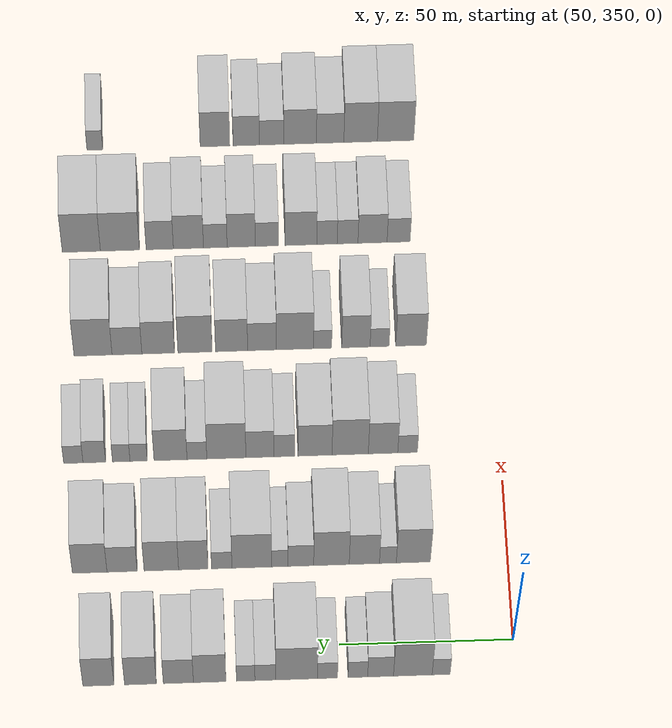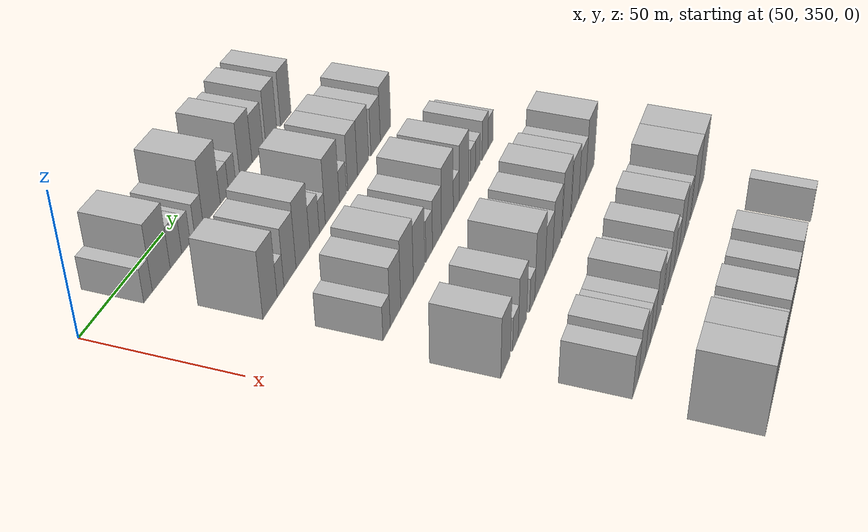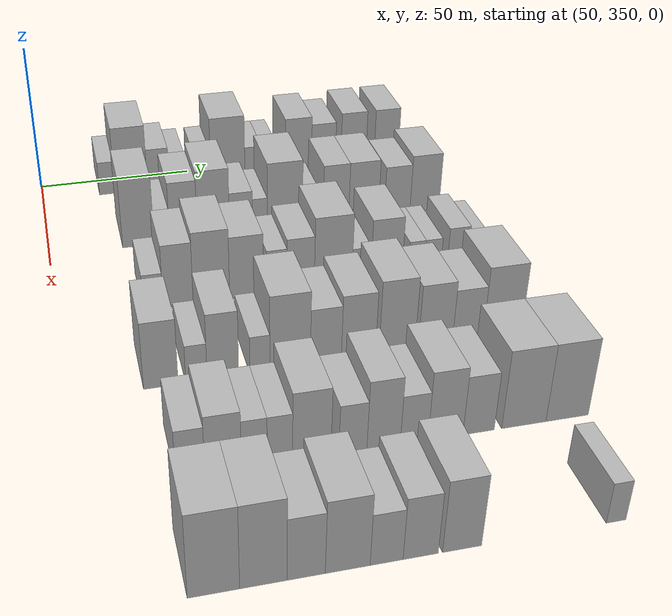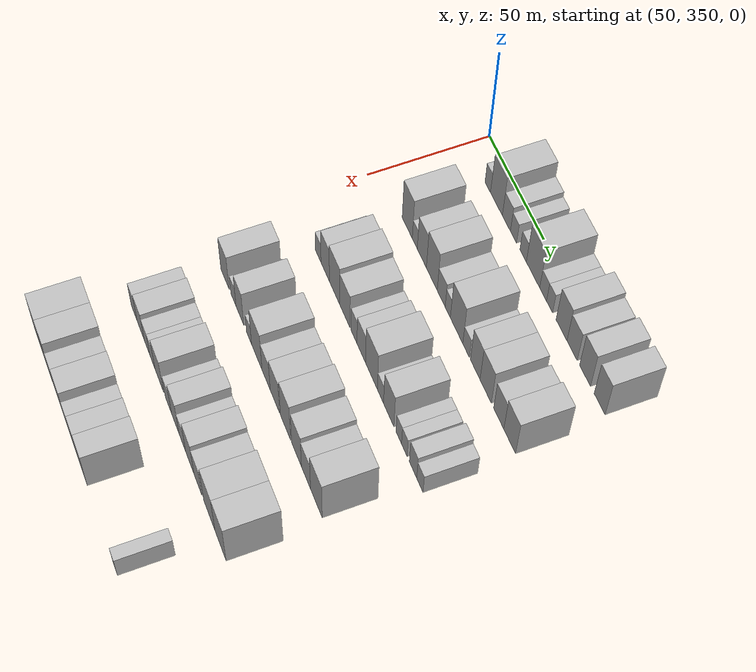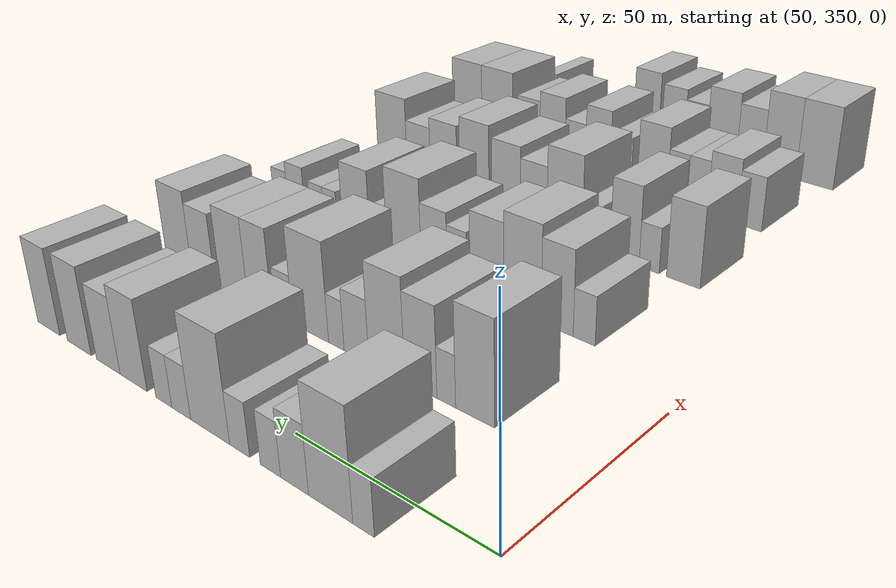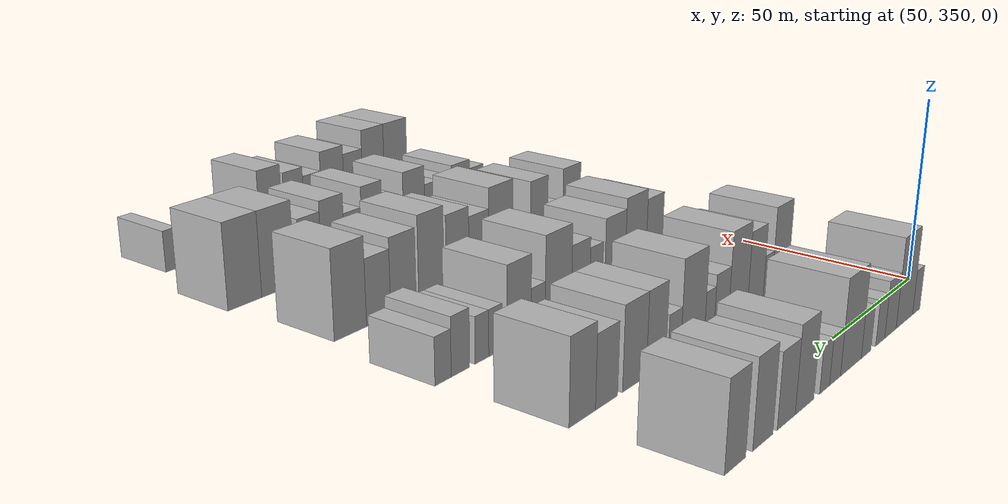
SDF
<sdf version="1.6">
 <world name="default">
  <model name="building_107">
   <static>1</static>
   <pose>50.0000 371.3423 0 0.000000 0.000000 0.000000</pose>
   <link name="link">
    <pose>0 0 6.00 0 0 0</pose>
    <collision name="collision"><geometry><box><size>20.0000 5.1537 12.0000</size></box></geometry></collision>
    <visual name="visual">
     <cast_shadows>0</cast_shadows>
     <geometry><box><size>20.0000 5.1537 12.0000</size></box></geometry>
     <material>
      <script>
       <uri>model://HANNAS_wall/materials/scripts</uri>
       <uri>model://HANNAS_wall/materials/textures</uri>
       <name>vrc/HANNAS_wall</name>
      </script>
     </material>
    </visual>
   </link>
  </model>
  <model name="building_108">
   <static>1</static>
   <pose>50.0000 379.4496 0 0.000000 0.000000 0.000000</pose>
   <link name="link">
    <pose>0 0 12.00 0 0 0</pose>
    <collision name="collision"><geometry><box><size>20.0000 11.0610 24.0000</size></box></geometry></collision>
    <visual name="visual">
     <cast_shadows>0</cast_shadows>
     <geometry><box><size>20.0000 11.0610 24.0000</size></box></geometry>
     <material>
      <script>
       <uri>model://HANNAS_wall/materials/scripts</uri>
       <uri>model://HANNAS_wall/materials/textures</uri>
       <name>vrc/HANNAS_wall</name>
      </script>
     </material>
    </visual>
   </link>
  </model>
  <model name="building_109">
   <static>1</static>
   <pose>50.0000 388.6870 0 0.000000 0.000000 0.000000</pose>
   <link name="link">
    <pose>0 0 7.50 0 0 0</pose>
    <collision name="collision"><geometry><box><size>20.0000 7.4139 15.0000</size></box></geometry></collision>
    <visual name="visual">
     <cast_shadows>0</cast_shadows>
     <geometry><box><size>20.0000 7.4139 15.0000</size></box></geometry>
     <material>
      <script>
       <uri>model://HANNAS_wall/materials/scripts</uri>
       <uri>model://HANNAS_wall/materials/textures</uri>
       <name>vrc/HANNAS_wall</name>
      </script>
     </material>
    </visual>
   </link>
  </model>
  <model name="building_110">
   <static>1</static>
   <pose>50.0000 395.1923 0 0.000000 0.000000 0.000000</pose>
   <link name="link">
    <pose>0 0 6.00 0 0 0</pose>
    <collision name="collision"><geometry><box><size>20.0000 5.5966 12.0000</size></box></geometry></collision>
    <visual name="visual">
     <cast_shadows>0</cast_shadows>
     <geometry><box><size>20.0000 5.5966 12.0000</size></box></geometry>
     <material>
      <script>
       <uri>model://HANNAS_wall/materials/scripts</uri>
       <uri>model://HANNAS_wall/materials/textures</uri>
       <name>vrc/HANNAS_wall</name>
      </script>
     </material>
    </visual>
   </link>
  </model>
  <model name="building_111">
   <static>1</static>
   <pose>50.0000 403.8719 0 0.000000 0.000000 0.000000</pose>
   <link name="link">
    <pose>0 0 6.00 0 0 0</pose>
    <collision name="collision"><geometry><box><size>20.0000 5.7627 12.0000</size></box></geometry></collision>
    <visual name="visual">
     <cast_shadows>0</cast_shadows>
     <geometry><box><size>20.0000 5.7627 12.0000</size></box></geometry>
     <material>
      <script>
       <uri>model://HANNAS_wall/materials/scripts</uri>
       <uri>model://HANNAS_wall/materials/textures</uri>
       <name>vrc/HANNAS_wall</name>
      </script>
     </material>
    </visual>
   </link>
  </model>
  <model name="building_112">
   <static>1</static>
   <pose>50.0000 412.6884 0 0.000000 0.000000 0.000000</pose>
   <link name="link">
    <pose>0 0 12.00 0 0 0</pose>
    <collision name="collision"><geometry><box><size>20.0000 11.8703 24.0000</size></box></geometry></collision>
    <visual name="visual">
     <cast_shadows>0</cast_shadows>
     <geometry><box><size>20.0000 11.8703 24.0000</size></box></geometry>
     <material>
      <script>
       <uri>model://HANNAS_wall/materials/scripts</uri>
       <uri>model://HANNAS_wall/materials/textures</uri>
       <name>vrc/HANNAS_wall</name>
      </script>
     </material>
    </visual>
   </link>
  </model>
  <model name="building_113">
   <static>1</static>
   <pose>50.0000 421.6169 0 0.000000 0.000000 0.000000</pose>
   <link name="link">
    <pose>0 0 6.00 0 0 0</pose>
    <collision name="collision"><geometry><box><size>20.0000 5.9867 12.0000</size></box></geometry></collision>
    <visual name="visual">
     <cast_shadows>0</cast_shadows>
     <geometry><box><size>20.0000 5.9867 12.0000</size></box></geometry>
     <material>
      <script>
       <uri>model://HANNAS_wall/materials/scripts</uri>
       <uri>model://HANNAS_wall/materials/textures</uri>
       <name>vrc/HANNAS_wall</name>
      </script>
     </material>
    </visual>
   </link>
  </model>
  <model name="building_114">
   <static>1</static>
   <pose>50.0000 427.2503 0 0.000000 0.000000 0.000000</pose>
   <link name="link">
    <pose>0 0 6.00 0 0 0</pose>
    <collision name="collision"><geometry><box><size>20.0000 5.2800 12.0000</size></box></geometry></collision>
    <visual name="visual">
     <cast_shadows>0</cast_shadows>
     <geometry><box><size>20.0000 5.2800 12.0000</size></box></geometry>
     <material>
      <script>
       <uri>model://HANNAS_wall/materials/scripts</uri>
       <uri>model://HANNAS_wall/materials/textures</uri>
       <name>vrc/HANNAS_wall</name>
      </script>
     </material>
    </visual>
   </link>
  </model>
  <model name="building_115">
   <static>1</static>
   <pose>50.0000 437.5426 0 0.000000 0.000000 0.000000</pose>
   <link name="link">
    <pose>0 0 10.50 0 0 0</pose>
    <collision name="collision"><geometry><box><size>20.0000 9.3045 21.0000</size></box></geometry></collision>
    <visual name="visual">
     <cast_shadows>0</cast_shadows>
     <geometry><box><size>20.0000 9.3045 21.0000</size></box></geometry>
     <material>
      <script>
       <uri>model://HANNAS_wall/materials/scripts</uri>
       <uri>model://HANNAS_wall/materials/textures</uri>
       <name>vrc/HANNAS_wall</name>
      </script>
     </material>
    </visual>
   </link>
  </model>
  <model name="building_116">
   <static>1</static>
   <pose>50.0000 446.4914 0 0.000000 0.000000 0.000000</pose>
   <link name="link">
    <pose>0 0 9.00 0 0 0</pose>
    <collision name="collision"><geometry><box><size>20.0000 8.5932 18.0000</size></box></geometry></collision>
    <visual name="visual">
     <cast_shadows>0</cast_shadows>
     <geometry><box><size>20.0000 8.5932 18.0000</size></box></geometry>
     <material>
      <script>
       <uri>model://HANNAS_wall/materials/scripts</uri>
       <uri>model://HANNAS_wall/materials/textures</uri>
       <name>vrc/HANNAS_wall</name>
      </script>
     </material>
    </visual>
   </link>
  </model>
  <model name="building_117">
   <static>1</static>
   <pose>50.0000 457.3219 0 0.000000 0.000000 0.000000</pose>
   <link name="link">
    <pose>0 0 10.50 0 0 0</pose>
    <collision name="collision"><geometry><box><size>20.0000 9.0678 21.0000</size></box></geometry></collision>
    <visual name="visual">
     <cast_shadows>0</cast_shadows>
     <geometry><box><size>20.0000 9.0678 21.0000</size></box></geometry>
     <material>
      <script>
       <uri>model://HANNAS_wall/materials/scripts</uri>
       <uri>model://HANNAS_wall/materials/textures</uri>
       <name>vrc/HANNAS_wall</name>
      </script>
     </material>
    </visual>
   </link>
  </model>
  <model name="building_118">
   <static>1</static>
   <pose>50.0000 469.3062 0 0.000000 0.000000 0.000000</pose>
   <link name="link">
    <pose>0 0 10.50 0 0 0</pose>
    <collision name="collision"><geometry><box><size>20.0000 8.9006 21.0000</size></box></geometry></collision>
    <visual name="visual">
     <cast_shadows>0</cast_shadows>
     <geometry><box><size>20.0000 8.9006 21.0000</size></box></geometry>
     <material>
      <script>
       <uri>model://HANNAS_wall/materials/scripts</uri>
       <uri>model://HANNAS_wall/materials/textures</uri>
       <name>vrc/HANNAS_wall</name>
      </script>
     </material>
    </visual>
   </link>
  </model>
  <model name="building_234">
   <static>1</static>
   <pose>85.0000 377.5501 0 0.000000 0.000000 0.000000</pose>
   <link name="link">
    <pose>0 0 12.00 0 0 0</pose>
    <collision name="collision"><geometry><box><size>20.0000 9.8881 24.0000</size></box></geometry></collision>
    <visual name="visual">
     <cast_shadows>0</cast_shadows>
     <geometry><box><size>20.0000 9.8881 24.0000</size></box></geometry>
     <material>
      <script>
       <uri>model://HANNAS_wall/materials/scripts</uri>
       <uri>model://HANNAS_wall/materials/textures</uri>
       <name>vrc/HANNAS_wall</name>
      </script>
     </material>
    </visual>
   </link>
  </model>
  <model name="building_235">
   <static>1</static>
   <pose>85.0000 384.9365 0 0.000000 0.000000 0.000000</pose>
   <link name="link">
    <pose>0 0 6.00 0 0 0</pose>
    <collision name="collision"><geometry><box><size>20.0000 4.8847 12.0000</size></box></geometry></collision>
    <visual name="visual">
     <cast_shadows>0</cast_shadows>
     <geometry><box><size>20.0000 4.8847 12.0000</size></box></geometry>
     <material>
      <script>
       <uri>model://HANNAS_wall/materials/scripts</uri>
       <uri>model://HANNAS_wall/materials/textures</uri>
       <name>vrc/HANNAS_wall</name>
      </script>
     </material>
    </visual>
   </link>
  </model>
  <model name="building_236">
   <static>1</static>
   <pose>85.0000 391.7692 0 0.000000 0.000000 0.000000</pose>
   <link name="link">
    <pose>0 0 10.50 0 0 0</pose>
    <collision name="collision"><geometry><box><size>20.0000 8.7807 21.0000</size></box></geometry></collision>
    <visual name="visual">
     <cast_shadows>0</cast_shadows>
     <geometry><box><size>20.0000 8.7807 21.0000</size></box></geometry>
     <material>
      <script>
       <uri>model://HANNAS_wall/materials/scripts</uri>
       <uri>model://HANNAS_wall/materials/textures</uri>
       <name>vrc/HANNAS_wall</name>
      </script>
     </material>
    </visual>
   </link>
  </model>
  <model name="building_237">
   <static>1</static>
   <pose>85.0000 401.3191 0 0.000000 0.000000 0.000000</pose>
   <link name="link">
    <pose>0 0 12.00 0 0 0</pose>
    <collision name="collision"><geometry><box><size>20.0000 10.3191 24.0000</size></box></geometry></collision>
    <visual name="visual">
     <cast_shadows>0</cast_shadows>
     <geometry><box><size>20.0000 10.3191 24.0000</size></box></geometry>
     <material>
      <script>
       <uri>model://HANNAS_wall/materials/scripts</uri>
       <uri>model://HANNAS_wall/materials/textures</uri>
       <name>vrc/HANNAS_wall</name>
      </script>
     </material>
    </visual>
   </link>
  </model>
  <model name="building_238">
   <static>1</static>
   <pose>85.0000 410.1895 0 0.000000 0.000000 0.000000</pose>
   <link name="link">
    <pose>0 0 7.50 0 0 0</pose>
    <collision name="collision"><geometry><box><size>20.0000 7.4218 15.0000</size></box></geometry></collision>
    <visual name="visual">
     <cast_shadows>0</cast_shadows>
     <geometry><box><size>20.0000 7.4218 15.0000</size></box></geometry>
     <material>
      <script>
       <uri>model://HANNAS_wall/materials/scripts</uri>
       <uri>model://HANNAS_wall/materials/textures</uri>
       <name>vrc/HANNAS_wall</name>
      </script>
     </material>
    </visual>
   </link>
  </model>
  <model name="building_239">
   <static>1</static>
   <pose>85.0000 416.3084 0 0.000000 0.000000 0.000000</pose>
   <link name="link">
    <pose>0 0 6.00 0 0 0</pose>
    <collision name="collision"><geometry><box><size>20.0000 4.8160 12.0000</size></box></geometry></collision>
    <visual name="visual">
     <cast_shadows>0</cast_shadows>
     <geometry><box><size>20.0000 4.8160 12.0000</size></box></geometry>
     <material>
      <script>
       <uri>model://HANNAS_wall/materials/scripts</uri>
       <uri>model://HANNAS_wall/materials/textures</uri>
       <name>vrc/HANNAS_wall</name>
      </script>
     </material>
    </visual>
   </link>
  </model>
  <model name="building_240">
   <static>1</static>
   <pose>85.0000 424.4491 0 0.000000 0.000000 0.000000</pose>
   <link name="link">
    <pose>0 0 12.00 0 0 0</pose>
    <collision name="collision"><geometry><box><size>20.0000 11.4654 24.0000</size></box></geometry></collision>
    <visual name="visual">
     <cast_shadows>0</cast_shadows>
     <geometry><box><size>20.0000 11.4654 24.0000</size></box></geometry>
     <material>
      <script>
       <uri>model://HANNAS_wall/materials/scripts</uri>
       <uri>model://HANNAS_wall/materials/textures</uri>
       <name>vrc/HANNAS_wall</name>
      </script>
     </material>
    </visual>
   </link>
  </model>
  <model name="building_241">
   <static>1</static>
   <pose>85.0000 433.1329 0 0.000000 0.000000 0.000000</pose>
   <link name="link">
    <pose>0 0 6.00 0 0 0</pose>
    <collision name="collision"><geometry><box><size>20.0000 5.9022 12.0000</size></box></geometry></collision>
    <visual name="visual">
     <cast_shadows>0</cast_shadows>
     <geometry><box><size>20.0000 5.9022 12.0000</size></box></geometry>
     <material>
      <script>
       <uri>model://HANNAS_wall/materials/scripts</uri>
       <uri>model://HANNAS_wall/materials/textures</uri>
       <name>vrc/HANNAS_wall</name>
      </script>
     </material>
    </visual>
   </link>
  </model>
  <model name="building_242">
   <static>1</static>
   <pose>85.0000 441.3561 0 0.000000 0.000000 0.000000</pose>
   <link name="link">
    <pose>0 0 10.50 0 0 0</pose>
    <collision name="collision"><geometry><box><size>20.0000 8.5443 21.0000</size></box></geometry></collision>
    <visual name="visual">
     <cast_shadows>0</cast_shadows>
     <geometry><box><size>20.0000 8.5443 21.0000</size></box></geometry>
     <material>
      <script>
       <uri>model://HANNAS_wall/materials/scripts</uri>
       <uri>model://HANNAS_wall/materials/textures</uri>
       <name>vrc/HANNAS_wall</name>
      </script>
     </material>
    </visual>
   </link>
  </model>
  <model name="building_243">
   <static>1</static>
   <pose>85.0000 450.6318 0 0.000000 0.000000 0.000000</pose>
   <link name="link">
    <pose>0 0 10.50 0 0 0</pose>
    <collision name="collision"><geometry><box><size>20.0000 10.0069 21.0000</size></box></geometry></collision>
    <visual name="visual">
     <cast_shadows>0</cast_shadows>
     <geometry><box><size>20.0000 10.0069 21.0000</size></box></geometry>
     <material>
      <script>
       <uri>model://HANNAS_wall/materials/scripts</uri>
       <uri>model://HANNAS_wall/materials/textures</uri>
       <name>vrc/HANNAS_wall</name>
      </script>
     </material>
    </visual>
   </link>
  </model>
  <model name="building_244">
   <static>1</static>
   <pose>85.0000 462.0144 0 0.000000 0.000000 0.000000</pose>
   <link name="link">
    <pose>0 0 9.00 0 0 0</pose>
    <collision name="collision"><geometry><box><size>20.0000 8.7583 18.0000</size></box></geometry></collision>
    <visual name="visual">
     <cast_shadows>0</cast_shadows>
     <geometry><box><size>20.0000 8.7583 18.0000</size></box></geometry>
     <material>
      <script>
       <uri>model://HANNAS_wall/materials/scripts</uri>
       <uri>model://HANNAS_wall/materials/textures</uri>
       <name>vrc/HANNAS_wall</name>
      </script>
     </material>
    </visual>
   </link>
  </model>
  <model name="building_245">
   <static>1</static>
   <pose>85.0000 471.4007 0 0.000000 0.000000 0.000000</pose>
   <link name="link">
    <pose>0 0 10.50 0 0 0</pose>
    <collision name="collision"><geometry><box><size>20.0000 10.0142 21.0000</size></box></geometry></collision>
    <visual name="visual">
     <cast_shadows>0</cast_shadows>
     <geometry><box><size>20.0000 10.0142 21.0000</size></box></geometry>
     <material>
      <script>
       <uri>model://HANNAS_wall/materials/scripts</uri>
       <uri>model://HANNAS_wall/materials/textures</uri>
       <name>vrc/HANNAS_wall</name>
      </script>
     </material>
    </visual>
   </link>
  </model>
  <model name="building_356">
   <static>1</static>
   <pose>120.0000 377.4771 0 0.000000 0.000000 0.000000</pose>
   <link name="link">
    <pose>0 0 6.00 0 0 0</pose>
    <collision name="collision"><geometry><box><size>20.0000 5.7829 12.0000</size></box></geometry></collision>
    <visual name="visual">
     <cast_shadows>0</cast_shadows>
     <geometry><box><size>20.0000 5.7829 12.0000</size></box></geometry>
     <material>
      <script>
       <uri>model://HANNAS_wall/materials/scripts</uri>
       <uri>model://HANNAS_wall/materials/textures</uri>
       <name>vrc/HANNAS_wall</name>
      </script>
     </material>
    </visual>
   </link>
  </model>
  <model name="building_357">
   <static>1</static>
   <pose>120.0000 384.7134 0 0.000000 0.000000 0.000000</pose>
   <link name="link">
    <pose>0 0 10.50 0 0 0</pose>
    <collision name="collision"><geometry><box><size>20.0000 8.6897 21.0000</size></box></geometry></collision>
    <visual name="visual">
     <cast_shadows>0</cast_shadows>
     <geometry><box><size>20.0000 8.6897 21.0000</size></box></geometry>
     <material>
      <script>
       <uri>model://HANNAS_wall/materials/scripts</uri>
       <uri>model://HANNAS_wall/materials/textures</uri>
       <name>vrc/HANNAS_wall</name>
      </script>
     </material>
    </visual>
   </link>
  </model>
  <model name="building_358">
   <static>1</static>
   <pose>120.0000 394.3986 0 0.000000 0.000000 0.000000</pose>
   <link name="link">
    <pose>0 0 12.00 0 0 0</pose>
    <collision name="collision"><geometry><box><size>20.0000 10.6808 24.0000</size></box></geometry></collision>
    <visual name="visual">
     <cast_shadows>0</cast_shadows>
     <geometry><box><size>20.0000 10.6808 24.0000</size></box></geometry>
     <material>
      <script>
       <uri>model://HANNAS_wall/materials/scripts</uri>
       <uri>model://HANNAS_wall/materials/textures</uri>
       <name>vrc/HANNAS_wall</name>
      </script>
     </material>
    </visual>
   </link>
  </model>
  <model name="building_359">
   <static>1</static>
   <pose>120.0000 404.7355 0 0.000000 0.000000 0.000000</pose>
   <link name="link">
    <pose>0 0 10.50 0 0 0</pose>
    <collision name="collision"><geometry><box><size>20.0000 9.9930 21.0000</size></box></geometry></collision>
    <visual name="visual">
     <cast_shadows>0</cast_shadows>
     <geometry><box><size>20.0000 9.9930 21.0000</size></box></geometry>
     <material>
      <script>
       <uri>model://HANNAS_wall/materials/scripts</uri>
       <uri>model://HANNAS_wall/materials/textures</uri>
       <name>vrc/HANNAS_wall</name>
      </script>
     </material>
    </visual>
   </link>
  </model>
  <model name="building_360">
   <static>1</static>
   <pose>120.0000 413.7472 0 0.000000 0.000000 0.000000</pose>
   <link name="link">
    <pose>0 0 7.50 0 0 0</pose>
    <collision name="collision"><geometry><box><size>20.0000 6.0304 15.0000</size></box></geometry></collision>
    <visual name="visual">
     <cast_shadows>0</cast_shadows>
     <geometry><box><size>20.0000 6.0304 15.0000</size></box></geometry>
     <material>
      <script>
       <uri>model://HANNAS_wall/materials/scripts</uri>
       <uri>model://HANNAS_wall/materials/textures</uri>
       <name>vrc/HANNAS_wall</name>
      </script>
     </material>
    </visual>
   </link>
  </model>
  <model name="building_361">
   <static>1</static>
   <pose>120.0000 420.9211 0 0.000000 0.000000 0.000000</pose>
   <link name="link">
    <pose>0 0 9.00 0 0 0</pose>
    <collision name="collision"><geometry><box><size>20.0000 8.3174 18.0000</size></box></geometry></collision>
    <visual name="visual">
     <cast_shadows>0</cast_shadows>
     <geometry><box><size>20.0000 8.3174 18.0000</size></box></geometry>
     <material>
      <script>
       <uri>model://HANNAS_wall/materials/scripts</uri>
       <uri>model://HANNAS_wall/materials/textures</uri>
       <name>vrc/HANNAS_wall</name>
      </script>
     </material>
    </visual>
   </link>
  </model>
  <model name="building_362">
   <static>1</static>
   <pose>120.0000 430.8181 0 0.000000 0.000000 0.000000</pose>
   <link name="link">
    <pose>0 0 12.00 0 0 0</pose>
    <collision name="collision"><geometry><box><size>20.0000 11.4766 24.0000</size></box></geometry></collision>
    <visual name="visual">
     <cast_shadows>0</cast_shadows>
     <geometry><box><size>20.0000 11.4766 24.0000</size></box></geometry>
     <material>
      <script>
       <uri>model://HANNAS_wall/materials/scripts</uri>
       <uri>model://HANNAS_wall/materials/textures</uri>
       <name>vrc/HANNAS_wall</name>
      </script>
     </material>
    </visual>
   </link>
  </model>
  <model name="building_363">
   <static>1</static>
   <pose>120.0000 439.4649 0 0.000000 0.000000 0.000000</pose>
   <link name="link">
    <pose>0 0 6.00 0 0 0</pose>
    <collision name="collision"><geometry><box><size>20.0000 5.8169 12.0000</size></box></geometry></collision>
    <visual name="visual">
     <cast_shadows>0</cast_shadows>
     <geometry><box><size>20.0000 5.8169 12.0000</size></box></geometry>
     <material>
      <script>
       <uri>model://HANNAS_wall/materials/scripts</uri>
       <uri>model://HANNAS_wall/materials/textures</uri>
       <name>vrc/HANNAS_wall</name>
      </script>
     </material>
    </visual>
   </link>
  </model>
  <model name="building_364">
   <static>1</static>
   <pose>120.0000 447.2163 0 0.000000 0.000000 0.000000</pose>
   <link name="link">
    <pose>0 0 10.50 0 0 0</pose>
    <collision name="collision"><geometry><box><size>20.0000 9.6861 21.0000</size></box></geometry></collision>
    <visual name="visual">
     <cast_shadows>0</cast_shadows>
     <geometry><box><size>20.0000 9.6861 21.0000</size></box></geometry>
     <material>
      <script>
       <uri>model://HANNAS_wall/materials/scripts</uri>
       <uri>model://HANNAS_wall/materials/textures</uri>
       <name>vrc/HANNAS_wall</name>
      </script>
     </material>
    </visual>
   </link>
  </model>
  <model name="building_365">
   <static>1</static>
   <pose>120.0000 456.5959 0 0.000000 0.000000 0.000000</pose>
   <link name="link">
    <pose>0 0 6.00 0 0 0</pose>
    <collision name="collision"><geometry><box><size>20.0000 5.0731 12.0000</size></box></geometry></collision>
    <visual name="visual">
     <cast_shadows>0</cast_shadows>
     <geometry><box><size>20.0000 5.0731 12.0000</size></box></geometry>
     <material>
      <script>
       <uri>model://HANNAS_wall/materials/scripts</uri>
       <uri>model://HANNAS_wall/materials/textures</uri>
       <name>vrc/HANNAS_wall</name>
      </script>
     </material>
    </visual>
   </link>
  </model>
  <model name="building_366">
   <static>1</static>
   <pose>120.0000 461.7046 0 0.000000 0.000000 0.000000</pose>
   <link name="link">
    <pose>0 0 6.00 0 0 0</pose>
    <collision name="collision"><geometry><box><size>20.0000 5.1444 12.0000</size></box></geometry></collision>
    <visual name="visual">
     <cast_shadows>0</cast_shadows>
     <geometry><box><size>20.0000 5.1444 12.0000</size></box></geometry>
     <material>
      <script>
       <uri>model://HANNAS_wall/materials/scripts</uri>
       <uri>model://HANNAS_wall/materials/textures</uri>
       <name>vrc/HANNAS_wall</name>
      </script>
     </material>
    </visual>
   </link>
  </model>
  <model name="building_367">
   <static>1</static>
   <pose>120.0000 469.6070 0 0.000000 0.000000 0.000000</pose>
   <link name="link">
    <pose>0 0 7.50 0 0 0</pose>
    <collision name="collision"><geometry><box><size>20.0000 6.6603 15.0000</size></box></geometry></collision>
    <visual name="visual">
     <cast_shadows>0</cast_shadows>
     <geometry><box><size>20.0000 6.6603 15.0000</size></box></geometry>
     <material>
      <script>
       <uri>model://HANNAS_wall/materials/scripts</uri>
       <uri>model://HANNAS_wall/materials/textures</uri>
       <name>vrc/HANNAS_wall</name>
      </script>
     </material>
    </visual>
   </link>
  </model>
  <model name="building_368">
   <static>1</static>
   <pose>120.0000 475.7721 0 0.000000 0.000000 0.000000</pose>
   <link name="link">
    <pose>0 0 6.00 0 0 0</pose>
    <collision name="collision"><geometry><box><size>20.0000 5.6699 12.0000</size></box></geometry></collision>
    <visual name="visual">
     <cast_shadows>0</cast_shadows>
     <geometry><box><size>20.0000 5.6699 12.0000</size></box></geometry>
     <material>
      <script>
       <uri>model://HANNAS_wall/materials/scripts</uri>
       <uri>model://HANNAS_wall/materials/textures</uri>
       <name>vrc/HANNAS_wall</name>
      </script>
     </material>
    </visual>
   </link>
  </model>
  <model name="building_482">
   <static>1</static>
   <pose>155.0000 374.7121 0 0.000000 0.000000 0.000000</pose>
   <link name="link">
    <pose>0 0 10.50 0 0 0</pose>
    <collision name="collision"><geometry><box><size>20.0000 9.1298 21.0000</size></box></geometry></collision>
    <visual name="visual">
     <cast_shadows>0</cast_shadows>
     <geometry><box><size>20.0000 9.1298 21.0000</size></box></geometry>
     <material>
      <script>
       <uri>model://HANNAS_wall/materials/scripts</uri>
       <uri>model://HANNAS_wall/materials/textures</uri>
       <name>vrc/HANNAS_wall</name>
      </script>
     </material>
    </visual>
   </link>
  </model>
  <model name="building_483">
   <static>1</static>
   <pose>155.0000 384.1150 0 0.000000 0.000000 0.000000</pose>
   <link name="link">
    <pose>0 0 6.00 0 0 0</pose>
    <collision name="collision"><geometry><box><size>20.0000 5.6760 12.0000</size></box></geometry></collision>
    <visual name="visual">
     <cast_shadows>0</cast_shadows>
     <geometry><box><size>20.0000 5.6760 12.0000</size></box></geometry>
     <material>
      <script>
       <uri>model://HANNAS_wall/materials/scripts</uri>
       <uri>model://HANNAS_wall/materials/textures</uri>
       <name>vrc/HANNAS_wall</name>
      </script>
     </material>
    </visual>
   </link>
  </model>
  <model name="building_484">
   <static>1</static>
   <pose>155.0000 391.1809 0 0.000000 0.000000 0.000000</pose>
   <link name="link">
    <pose>0 0 10.50 0 0 0</pose>
    <collision name="collision"><geometry><box><size>20.0000 8.4558 21.0000</size></box></geometry></collision>
    <visual name="visual">
     <cast_shadows>0</cast_shadows>
     <geometry><box><size>20.0000 8.4558 21.0000</size></box></geometry>
     <material>
      <script>
       <uri>model://HANNAS_wall/materials/scripts</uri>
       <uri>model://HANNAS_wall/materials/textures</uri>
       <name>vrc/HANNAS_wall</name>
      </script>
     </material>
    </visual>
   </link>
  </model>
  <model name="building_485">
   <static>1</static>
   <pose>155.0000 401.1190 0 0.000000 0.000000 0.000000</pose>
   <link name="link">
    <pose>0 0 6.00 0 0 0</pose>
    <collision name="collision"><geometry><box><size>20.0000 5.4204 12.0000</size></box></geometry></collision>
    <visual name="visual">
     <cast_shadows>0</cast_shadows>
     <geometry><box><size>20.0000 5.4204 12.0000</size></box></geometry>
     <material>
      <script>
       <uri>model://HANNAS_wall/materials/scripts</uri>
       <uri>model://HANNAS_wall/materials/textures</uri>
       <name>vrc/HANNAS_wall</name>
      </script>
     </material>
    </visual>
   </link>
  </model>
  <model name="building_486">
   <static>1</static>
   <pose>155.0000 409.3573 0 0.000000 0.000000 0.000000</pose>
   <link name="link">
    <pose>0 0 12.00 0 0 0</pose>
    <collision name="collision"><geometry><box><size>20.0000 11.0562 24.0000</size></box></geometry></collision>
    <visual name="visual">
     <cast_shadows>0</cast_shadows>
     <geometry><box><size>20.0000 11.0562 24.0000</size></box></geometry>
     <material>
      <script>
       <uri>model://HANNAS_wall/materials/scripts</uri>
       <uri>model://HANNAS_wall/materials/textures</uri>
       <name>vrc/HANNAS_wall</name>
      </script>
     </material>
    </visual>
   </link>
  </model>
  <model name="building_487">
   <static>1</static>
   <pose>155.0000 419.1871 0 0.000000 0.000000 0.000000</pose>
   <link name="link">
    <pose>0 0 9.00 0 0 0</pose>
    <collision name="collision"><geometry><box><size>20.0000 8.6033 18.0000</size></box></geometry></collision>
    <visual name="visual">
     <cast_shadows>0</cast_shadows>
     <geometry><box><size>20.0000 8.6033 18.0000</size></box></geometry>
     <material>
      <script>
       <uri>model://HANNAS_wall/materials/scripts</uri>
       <uri>model://HANNAS_wall/materials/textures</uri>
       <name>vrc/HANNAS_wall</name>
      </script>
     </material>
    </visual>
   </link>
  </model>
  <model name="building_488">
   <static>1</static>
   <pose>155.0000 428.2686 0 0.000000 0.000000 0.000000</pose>
   <link name="link">
    <pose>0 0 10.50 0 0 0</pose>
    <collision name="collision"><geometry><box><size>20.0000 9.5598 21.0000</size></box></geometry></collision>
    <visual name="visual">
     <cast_shadows>0</cast_shadows>
     <geometry><box><size>20.0000 9.5598 21.0000</size></box></geometry>
     <material>
      <script>
       <uri>model://HANNAS_wall/materials/scripts</uri>
       <uri>model://HANNAS_wall/materials/textures</uri>
       <name>vrc/HANNAS_wall</name>
      </script>
     </material>
    </visual>
   </link>
  </model>
  <model name="building_489">
   <static>1</static>
   <pose>155.0000 439.1493 0 0.000000 0.000000 0.000000</pose>
   <link name="link">
    <pose>0 0 12.00 0 0 0</pose>
    <collision name="collision"><geometry><box><size>20.0000 10.2017 24.0000</size></box></geometry></collision>
    <visual name="visual">
     <cast_shadows>0</cast_shadows>
     <geometry><box><size>20.0000 10.2017 24.0000</size></box></geometry>
     <material>
      <script>
       <uri>model://HANNAS_wall/materials/scripts</uri>
       <uri>model://HANNAS_wall/materials/textures</uri>
       <name>vrc/HANNAS_wall</name>
      </script>
     </material>
    </visual>
   </link>
  </model>
  <model name="building_490">
   <static>1</static>
   <pose>155.0000 450.1315 0 0.000000 0.000000 0.000000</pose>
   <link name="link">
    <pose>0 0 10.50 0 0 0</pose>
    <collision name="collision"><geometry><box><size>20.0000 9.7627 21.0000</size></box></geometry></collision>
    <visual name="visual">
     <cast_shadows>0</cast_shadows>
     <geometry><box><size>20.0000 9.7627 21.0000</size></box></geometry>
     <material>
      <script>
       <uri>model://HANNAS_wall/materials/scripts</uri>
       <uri>model://HANNAS_wall/materials/textures</uri>
       <name>vrc/HANNAS_wall</name>
      </script>
     </material>
    </visual>
   </link>
  </model>
  <model name="building_491">
   <static>1</static>
   <pose>155.0000 459.4520 0 0.000000 0.000000 0.000000</pose>
   <link name="link">
    <pose>0 0 9.00 0 0 0</pose>
    <collision name="collision"><geometry><box><size>20.0000 8.8782 18.0000</size></box></geometry></collision>
    <visual name="visual">
     <cast_shadows>0</cast_shadows>
     <geometry><box><size>20.0000 8.8782 18.0000</size></box></geometry>
     <material>
      <script>
       <uri>model://HANNAS_wall/materials/scripts</uri>
       <uri>model://HANNAS_wall/materials/textures</uri>
       <name>vrc/HANNAS_wall</name>
      </script>
     </material>
    </visual>
   </link>
  </model>
  <model name="building_492">
   <static>1</static>
   <pose>155.0000 469.5490 0 0.000000 0.000000 0.000000</pose>
   <link name="link">
    <pose>0 0 12.00 0 0 0</pose>
    <collision name="collision"><geometry><box><size>20.0000 11.3158 24.0000</size></box></geometry></collision>
    <visual name="visual">
     <cast_shadows>0</cast_shadows>
     <geometry><box><size>20.0000 11.3158 24.0000</size></box></geometry>
     <material>
      <script>
       <uri>model://HANNAS_wall/materials/scripts</uri>
       <uri>model://HANNAS_wall/materials/textures</uri>
       <name>vrc/HANNAS_wall</name>
      </script>
     </material>
    </visual>
   </link>
  </model>
  <model name="building_610">
   <static>1</static>
   <pose>190.0000 376.7433 0 0.000000 0.000000 0.000000</pose>
   <link name="link">
    <pose>0 0 7.50 0 0 0</pose>
    <collision name="collision"><geometry><box><size>20.0000 6.9698 15.0000</size></box></geometry></collision>
    <visual name="visual">
     <cast_shadows>0</cast_shadows>
     <geometry><box><size>20.0000 6.9698 15.0000</size></box></geometry>
     <material>
      <script>
       <uri>model://HANNAS_wall/materials/scripts</uri>
       <uri>model://HANNAS_wall/materials/textures</uri>
       <name>vrc/HANNAS_wall</name>
      </script>
     </material>
    </visual>
   </link>
  </model>
  <model name="building_611">
   <static>1</static>
   <pose>190.0000 384.6324 0 0.000000 0.000000 0.000000</pose>
   <link name="link">
    <pose>0 0 9.00 0 0 0</pose>
    <collision name="collision"><geometry><box><size>20.0000 8.8084 18.0000</size></box></geometry></collision>
    <visual name="visual">
     <cast_shadows>0</cast_shadows>
     <geometry><box><size>20.0000 8.8084 18.0000</size></box></geometry>
     <material>
      <script>
       <uri>model://HANNAS_wall/materials/scripts</uri>
       <uri>model://HANNAS_wall/materials/textures</uri>
       <name>vrc/HANNAS_wall</name>
      </script>
     </material>
    </visual>
   </link>
  </model>
  <model name="building_612">
   <static>1</static>
   <pose>190.0000 392.1817 0 0.000000 0.000000 0.000000</pose>
   <link name="link">
    <pose>0 0 7.50 0 0 0</pose>
    <collision name="collision"><geometry><box><size>20.0000 6.2902 15.0000</size></box></geometry></collision>
    <visual name="visual">
     <cast_shadows>0</cast_shadows>
     <geometry><box><size>20.0000 6.2902 15.0000</size></box></geometry>
     <material>
      <script>
       <uri>model://HANNAS_wall/materials/scripts</uri>
       <uri>model://HANNAS_wall/materials/textures</uri>
       <name>vrc/HANNAS_wall</name>
      </script>
     </material>
    </visual>
   </link>
  </model>
  <model name="building_613">
   <static>1</static>
   <pose>190.0000 398.4121 0 0.000000 0.000000 0.000000</pose>
   <link name="link">
    <pose>0 0 7.50 0 0 0</pose>
    <collision name="collision"><geometry><box><size>20.0000 6.1705 15.0000</size></box></geometry></collision>
    <visual name="visual">
     <cast_shadows>0</cast_shadows>
     <geometry><box><size>20.0000 6.1705 15.0000</size></box></geometry>
     <material>
      <script>
       <uri>model://HANNAS_wall/materials/scripts</uri>
       <uri>model://HANNAS_wall/materials/textures</uri>
       <name>vrc/HANNAS_wall</name>
      </script>
     </material>
    </visual>
   </link>
  </model>
  <model name="building_614">
   <static>1</static>
   <pose>190.0000 406.2792 0 0.000000 0.000000 0.000000</pose>
   <link name="link">
    <pose>0 0 10.50 0 0 0</pose>
    <collision name="collision"><geometry><box><size>20.0000 9.5638 21.0000</size></box></geometry></collision>
    <visual name="visual">
     <cast_shadows>0</cast_shadows>
     <geometry><box><size>20.0000 9.5638 21.0000</size></box></geometry>
     <material>
      <script>
       <uri>model://HANNAS_wall/materials/scripts</uri>
       <uri>model://HANNAS_wall/materials/textures</uri>
       <name>vrc/HANNAS_wall</name>
      </script>
     </material>
    </visual>
   </link>
  </model>
  <model name="building_615">
   <static>1</static>
   <pose>190.0000 416.5838 0 0.000000 0.000000 0.000000</pose>
   <link name="link">
    <pose>0 0 7.50 0 0 0</pose>
    <collision name="collision"><geometry><box><size>20.0000 7.0452 15.0000</size></box></geometry></collision>
    <visual name="visual">
     <cast_shadows>0</cast_shadows>
     <geometry><box><size>20.0000 7.0452 15.0000</size></box></geometry>
     <material>
      <script>
       <uri>model://HANNAS_wall/materials/scripts</uri>
       <uri>model://HANNAS_wall/materials/textures</uri>
       <name>vrc/HANNAS_wall</name>
      </script>
     </material>
    </visual>
   </link>
  </model>
  <model name="building_616">
   <static>1</static>
   <pose>190.0000 424.3549 0 0.000000 0.000000 0.000000</pose>
   <link name="link">
    <pose>0 0 10.50 0 0 0</pose>
    <collision name="collision"><geometry><box><size>20.0000 8.4969 21.0000</size></box></geometry></collision>
    <visual name="visual">
     <cast_shadows>0</cast_shadows>
     <geometry><box><size>20.0000 8.4969 21.0000</size></box></geometry>
     <material>
      <script>
       <uri>model://HANNAS_wall/materials/scripts</uri>
       <uri>model://HANNAS_wall/materials/textures</uri>
       <name>vrc/HANNAS_wall</name>
      </script>
     </material>
    </visual>
   </link>
  </model>
  <model name="building_617">
   <static>1</static>
   <pose>190.0000 432.1775 0 0.000000 0.000000 0.000000</pose>
   <link name="link">
    <pose>0 0 7.50 0 0 0</pose>
    <collision name="collision"><geometry><box><size>20.0000 7.1483 15.0000</size></box></geometry></collision>
    <visual name="visual">
     <cast_shadows>0</cast_shadows>
     <geometry><box><size>20.0000 7.1483 15.0000</size></box></geometry>
     <material>
      <script>
       <uri>model://HANNAS_wall/materials/scripts</uri>
       <uri>model://HANNAS_wall/materials/textures</uri>
       <name>vrc/HANNAS_wall</name>
      </script>
     </material>
    </visual>
   </link>
  </model>
  <model name="building_618">
   <static>1</static>
   <pose>190.0000 440.2991 0 0.000000 0.000000 0.000000</pose>
   <link name="link">
    <pose>0 0 10.50 0 0 0</pose>
    <collision name="collision"><geometry><box><size>20.0000 9.0950 21.0000</size></box></geometry></collision>
    <visual name="visual">
     <cast_shadows>0</cast_shadows>
     <geometry><box><size>20.0000 9.0950 21.0000</size></box></geometry>
     <material>
      <script>
       <uri>model://HANNAS_wall/materials/scripts</uri>
       <uri>model://HANNAS_wall/materials/textures</uri>
       <name>vrc/HANNAS_wall</name>
      </script>
     </material>
    </visual>
   </link>
  </model>
  <model name="building_619">
   <static>1</static>
   <pose>190.0000 448.9615 0 0.000000 0.000000 0.000000</pose>
   <link name="link">
    <pose>0 0 9.00 0 0 0</pose>
    <collision name="collision"><geometry><box><size>20.0000 8.2297 18.0000</size></box></geometry></collision>
    <visual name="visual">
     <cast_shadows>0</cast_shadows>
     <geometry><box><size>20.0000 8.2297 18.0000</size></box></geometry>
     <material>
      <script>
       <uri>model://HANNAS_wall/materials/scripts</uri>
       <uri>model://HANNAS_wall/materials/textures</uri>
       <name>vrc/HANNAS_wall</name>
      </script>
     </material>
    </visual>
   </link>
  </model>
  <model name="building_620">
   <static>1</static>
   <pose>190.0000 460.9836 0 0.000000 0.000000 0.000000</pose>
   <link name="link">
    <pose>0 0 12.00 0 0 0</pose>
    <collision name="collision"><geometry><box><size>20.0000 11.8144 24.0000</size></box></geometry></collision>
    <visual name="visual">
     <cast_shadows>0</cast_shadows>
     <geometry><box><size>20.0000 11.8144 24.0000</size></box></geometry>
     <material>
      <script>
       <uri>model://HANNAS_wall/materials/scripts</uri>
       <uri>model://HANNAS_wall/materials/textures</uri>
       <name>vrc/HANNAS_wall</name>
      </script>
     </material>
    </visual>
   </link>
  </model>
  <model name="building_621">
   <static>1</static>
   <pose>190.0000 472.6438 0 0.000000 0.000000 0.000000</pose>
   <link name="link">
    <pose>0 0 12.00 0 0 0</pose>
    <collision name="collision"><geometry><box><size>20.0000 11.5059 24.0000</size></box></geometry></collision>
    <visual name="visual">
     <cast_shadows>0</cast_shadows>
     <geometry><box><size>20.0000 11.5059 24.0000</size></box></geometry>
     <material>
      <script>
       <uri>model://HANNAS_wall/materials/scripts</uri>
       <uri>model://HANNAS_wall/materials/textures</uri>
       <name>vrc/HANNAS_wall</name>
      </script>
     </material>
    </visual>
   </link>
  </model>
  <model name="building_735">
   <static>1</static>
   <pose>225.0000 375.9754 0 0.000000 0.000000 0.000000</pose>
   <link name="link">
    <pose>0 0 12.00 0 0 0</pose>
    <collision name="collision"><geometry><box><size>20.0000 11.1863 24.0000</size></box></geometry></collision>
    <visual name="visual">
     <cast_shadows>0</cast_shadows>
     <geometry><box><size>20.0000 11.1863 24.0000</size></box></geometry>
     <material>
      <script>
       <uri>model://HANNAS_wall/materials/scripts</uri>
       <uri>model://HANNAS_wall/materials/textures</uri>
       <name>vrc/HANNAS_wall</name>
      </script>
     </material>
    </visual>
   </link>
  </model>
  <model name="building_736">
   <static>1</static>
   <pose>225.0000 386.7009 0 0.000000 0.000000 0.000000</pose>
   <link name="link">
    <pose>0 0 12.00 0 0 0</pose>
    <collision name="collision"><geometry><box><size>20.0000 10.2646 24.0000</size></box></geometry></collision>
    <visual name="visual">
     <cast_shadows>0</cast_shadows>
     <geometry><box><size>20.0000 10.2646 24.0000</size></box></geometry>
     <material>
      <script>
       <uri>model://HANNAS_wall/materials/scripts</uri>
       <uri>model://HANNAS_wall/materials/textures</uri>
       <name>vrc/HANNAS_wall</name>
      </script>
     </material>
    </visual>
   </link>
  </model>
  <model name="building_737">
   <static>1</static>
   <pose>225.0000 396.0515 0 0.000000 0.000000 0.000000</pose>
   <link name="link">
    <pose>0 0 9.00 0 0 0</pose>
    <collision name="collision"><geometry><box><size>20.0000 8.4366 18.0000</size></box></geometry></collision>
    <visual name="visual">
     <cast_shadows>0</cast_shadows>
     <geometry><box><size>20.0000 8.4366 18.0000</size></box></geometry>
     <material>
      <script>
       <uri>model://HANNAS_wall/materials/scripts</uri>
       <uri>model://HANNAS_wall/materials/textures</uri>
       <name>vrc/HANNAS_wall</name>
      </script>
     </material>
    </visual>
   </link>
  </model>
  <model name="building_738">
   <static>1</static>
   <pose>225.0000 405.2779 0 0.000000 0.000000 0.000000</pose>
   <link name="link">
    <pose>0 0 10.50 0 0 0</pose>
    <collision name="collision"><geometry><box><size>20.0000 10.0162 21.0000</size></box></geometry></collision>
    <visual name="visual">
     <cast_shadows>0</cast_shadows>
     <geometry><box><size>20.0000 10.0162 21.0000</size></box></geometry>
     <material>
      <script>
       <uri>model://HANNAS_wall/materials/scripts</uri>
       <uri>model://HANNAS_wall/materials/textures</uri>
       <name>vrc/HANNAS_wall</name>
      </script>
     </material>
    </visual>
   </link>
  </model>
  <model name="building_739">
   <static>1</static>
   <pose>225.0000 414.0131 0 0.000000 0.000000 0.000000</pose>
   <link name="link">
    <pose>0 0 7.50 0 0 0</pose>
    <collision name="collision"><geometry><box><size>20.0000 7.4543 15.0000</size></box></geometry></collision>
    <visual name="visual">
     <cast_shadows>0</cast_shadows>
     <geometry><box><size>20.0000 7.4543 15.0000</size></box></geometry>
     <material>
      <script>
       <uri>model://HANNAS_wall/materials/scripts</uri>
       <uri>model://HANNAS_wall/materials/textures</uri>
       <name>vrc/HANNAS_wall</name>
      </script>
     </material>
    </visual>
   </link>
  </model>
  <model name="building_740">
   <static>1</static>
   <pose>225.0000 421.7645 0 0.000000 0.000000 0.000000</pose>
   <link name="link">
    <pose>0 0 9.00 0 0 0</pose>
    <collision name="collision"><geometry><box><size>20.0000 8.0485 18.0000</size></box></geometry></collision>
    <visual name="visual">
     <cast_shadows>0</cast_shadows>
     <geometry><box><size>20.0000 8.0485 18.0000</size></box></geometry>
     <material>
      <script>
       <uri>model://HANNAS_wall/materials/scripts</uri>
       <uri>model://HANNAS_wall/materials/textures</uri>
       <name>vrc/HANNAS_wall</name>
      </script>
     </material>
    </visual>
   </link>
  </model>
  <model name="building_741">
   <static>1</static>
   <pose>225.0000 431.3282 0 0.000000 0.000000 0.000000</pose>
   <link name="link">
    <pose>0 0 10.50 0 0 0</pose>
    <collision name="collision"><geometry><box><size>20.0000 9.0789 21.0000</size></box></geometry></collision>
    <visual name="visual">
     <cast_shadows>0</cast_shadows>
     <geometry><box><size>20.0000 9.0789 21.0000</size></box></geometry>
     <material>
      <script>
       <uri>model://HANNAS_wall/materials/scripts</uri>
       <uri>model://HANNAS_wall/materials/textures</uri>
       <name>vrc/HANNAS_wall</name>
      </script>
     </material>
    </visual>
   </link>
  </model>
  <model name="building_742">
   <static>1</static>
   <pose>225.0000 468.1134 0 0.000000 0.000000 0.000000</pose>
   <link name="link">
    <pose>0 0 6.00 0 0 0</pose>
    <collision name="collision"><geometry><box><size>20.0000 4.8305 12.0000</size></box></geometry></collision>
    <visual name="visual">
     <cast_shadows>0</cast_shadows>
     <geometry><box><size>20.0000 4.8305 12.0000</size></box></geometry>
     <material>
      <script>
       <uri>model://HANNAS_wall/materials/scripts</uri>
       <uri>model://HANNAS_wall/materials/textures</uri>
       <name>vrc/HANNAS_wall</name>
      </script>
     </material>
    </visual>
   </link>
  </model>
 </world>
</sdf>
